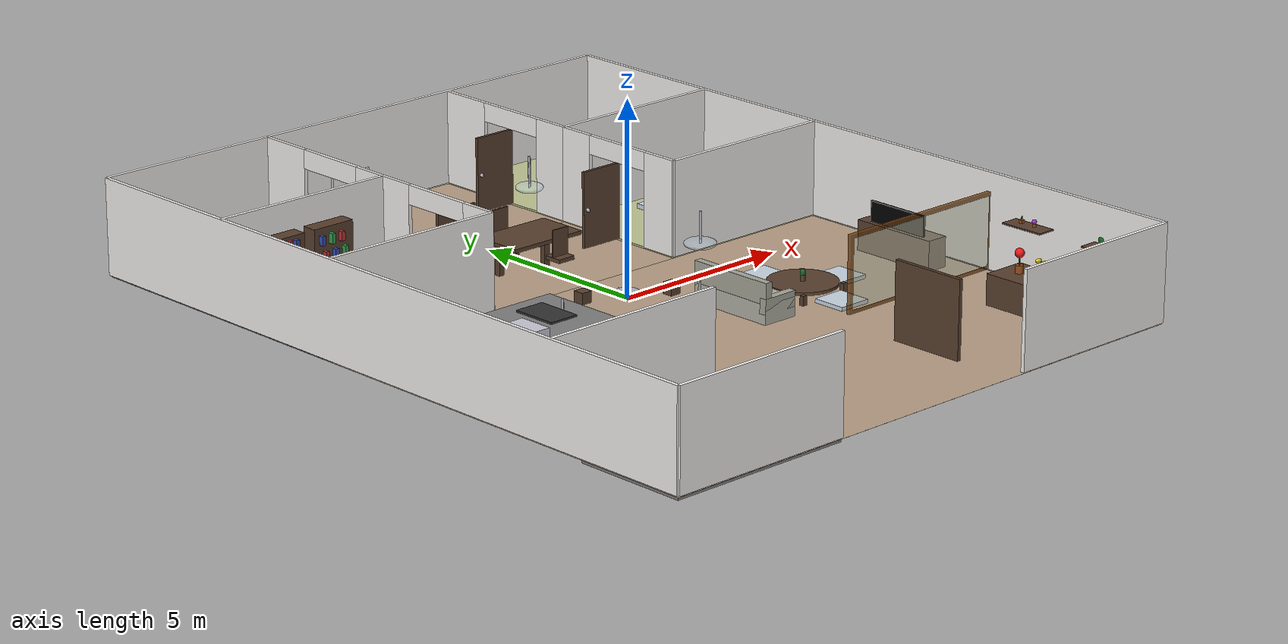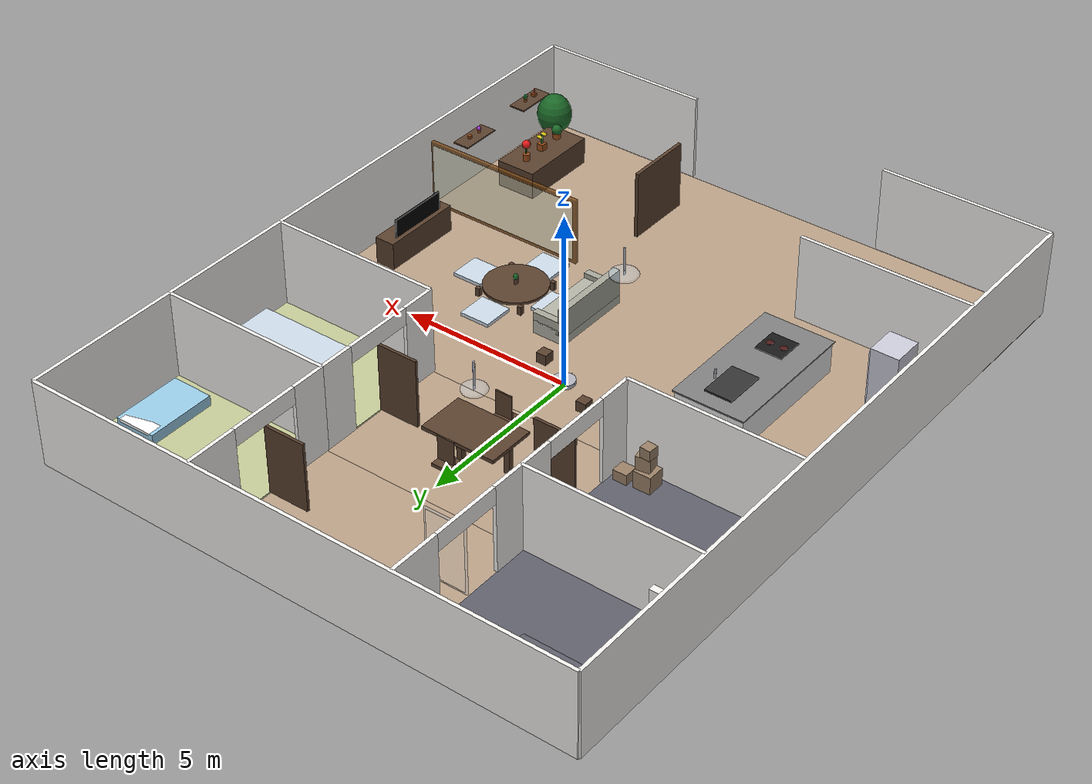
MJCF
<mujoco model="Japanese_320m2_Home">
  <compiler angle="degree" coordinate="local" inertiafromgeom="true"/>
  <option timestep="0.005" gravity="0 0 -9.81" density="1.2"/>

  <visual>
    <global offwidth="1920" offheight="1080" azimuth="140" elevation="-20"/>
    <quality shadowsize="4096"/>
    <map fogstart="25" fogend="40" znear="0.1"/>
  </visual>

  <default>
    <geom condim="3" friction="0.8 0.1 0.1" solimp="0.9 0.95 0.001" solref="0.02 1"/>
    <joint damping="1"/>
  </default>

  <asset>
    <texture name="tex_sky" type="skybox" builtin="gradient" rgb1="0.8 0.9 1.0" rgb2="0.6 0.8 0.9" width="512" height="512"/>

    <texture name="tex_floor_wood" type="2d" builtin="checker" rgb1="0.75 0.65 0.55" rgb2="0.7 0.6 0.5" width="512" height="512"/>
    <material name="mat_floor_wood" texture="tex_floor_wood" texrepeat="6 8" reflectance="0.2" specular="0.2"/>

    <texture name="tex_tatami" type="2d" builtin="checker" rgb1="0.78 0.8 0.6" rgb2="0.74 0.77 0.58" width="512" height="512"/>
    <material name="mat_tatami" texture="tex_tatami" texrepeat="8 8" reflectance="0.05" specular="0.05"/>

    <texture name="tex_tile" type="2d" builtin="checker" rgb1="0.4 0.4 0.45" rgb2="0.35 0.35 0.4" width="512" height="512"/>
    <material name="mat_tile" texture="tex_tile" texrepeat="8 8" reflectance="0.3" specular="0.3"/>

    <texture name="tex_wall" type="2d" builtin="flat" rgb1="0.96 0.95 0.94" width="512" height="512"/>
    <material name="mat_wall" texture="tex_wall" reflectance="0.1" specular="0.05"/>

    <material name="mat_wood_dark" rgba="0.35 0.25 0.18 1" reflectance="0.15" specular="0.2"/>
    <material name="mat_glass" rgba="0.8 0.9 1 0.3" reflectance="0.2" specular="0.4"/>
    <material name="mat_metal" rgba="0.7 0.7 0.75 1" reflectance="0.3" specular="0.5"/>
    <material name="mat_fabric" rgba="0.8 0.85 0.9 1" reflectance="0.05" specular="0.02"/>
    <material name="mat_stone" rgba="0.5 0.5 0.5 1" reflectance="0.1" specular="0.1"/>
    <material name="mat_plant" rgba="0.1 0.4 0.15 1" reflectance="0.1" specular="0.15"/>
    <material name="mat_pot" rgba="0.6 0.3 0.1 1" reflectance="0.1" specular="0.1"/> <!-- Terracotta -->
    <material name="mat_flower_red" rgba="0.9 0.1 0.1 1" reflectance="0.1" specular="0.1"/>
    <material name="mat_flower_yellow" rgba="0.9 0.8 0.1 1" reflectance="0.1" specular="0.1"/>
    <material name="mat_flower_purple" rgba="0.6 0.2 0.8 1" reflectance="0.1" specular="0.1"/>
    <material name="mat_cardboard" rgba="0.6 0.5 0.4 1" reflectance="0.1" specular="0.1"/>
    <material name="mat_tool_handle" rgba="0.8 0.1 0.1 1" reflectance="0.2" specular="0.2"/>
    <material name="mat_book_red" rgba="0.7 0.2 0.2 1" reflectance="0.1" specular="0.1"/>
    <material name="mat_book_blue" rgba="0.2 0.3 0.7 1" reflectance="0.1" specular="0.1"/>
    <material name="mat_book_green" rgba="0.2 0.6 0.3 1" reflectance="0.1" specular="0.1"/>

    <material name="mat_ceramic" rgba="0.9 0.9 0.95 1" reflectance="0.5" specular="0.5"/>
    <material name="mat_mirror" rgba="0.9 0.9 1 1" reflectance="0.95" specular="0.8"/>

    <!-- TV Screen Material -->
    <texture name="tex_screen" type="2d" builtin="flat" rgb1="0 0 0" width="800" height="450"/>
    <material name="mat_screen" texture="tex_screen" reflectance="0.1" specular="0.5"/>
  </asset>

  <worldbody>
    <light name="main_sun" directional="true" pos="-20 -15 30" dir="0.4 0.3 -1" diffuse="0.9 0.85 0.8" specular="0.3 0.3 0.3"/>
    <light name="fill_light" directional="true" pos="15 20 15" dir="-0.5 -0.5 -1" diffuse="0.4 0.4 0.45" specular="0.1 0.1 0.1"/>

    <!-- Perimeter walls -->
    <geom name="wall_north" type="box" pos="0 10 1.25" size="8 0.05 1.25" material="mat_wall"/>
    <geom name="wall_west"  type="box" pos="-8 0 1.25" size="0.05 10 1.25" material="mat_wall"/>

    <!-- Segmented East Wall (No Overlaps) -->
    <geom name="wall_east_living" type="box" pos="8 -4.25 1.25" size="0.05 5.75 1.25" material="mat_wall"/>
    <geom name="wall_east_master" type="box" pos="8 3.5 1.25" size="0.05 2 1.25" material="mat_wall"/>
    <geom name="wall_east_ne"     type="box" pos="8 7.75 1.25" size="0.05 2.25 1.25" material="mat_wall"/>

    <!-- ZONES (No Overlaps) -->
    <!-- South Living: Y -10 to 1.5 -->
    <geom name="zone_living_main" type="box" pos="0 -4.25 -0.049" size="8 5.75 0.001" material="mat_floor_wood"/>

    <!-- Central Block: Y 1.5 to 5.5 -->
    <!-- Kitchen (West): X -8 to -3 -->
    <geom name="zone_kitchen" type="box" pos="-5.5 3.5 -0.049" size="2.5 2 0.001" material="mat_tile"/>
    <!-- Dining/Hall (Center): X -3 to 3 -->
    <geom name="zone_dining" type="box" pos="0 3.5 -0.049" size="3 2 0.001" material="mat_floor_wood"/>
    <!-- Master Bedroom (East): X 3 to 8 -->
    <geom name="zone_bedroom_master" type="box" pos="5.5 3.5 -0.03" size="2.5 2 0.03" material="mat_tatami"/>

    <!-- North Block: Y 5.5 to 10 -->
    <!-- Bathroom (North West): X -8 to -3 -->
    <geom name="zone_bathroom" type="box" pos="-5.5 7.75 -0.049" size="2.5 2.25 0.001" material="mat_tile"/>
    <!-- North Center Room: X -3 to 3 -->
    <geom name="zone_room_north" type="box" pos="0 7.75 -0.049" size="3 2.25 0.001" material="mat_floor_wood"/>
    <!-- North East Room: X 3 to 8 -->
    <geom name="zone_bedroom_east" type="box" pos="5.5 7.75 -0.03" size="2.5 2.25 0.03" material="mat_tatami"/>

    <!-- Genkan (Entrance): In South Left corner -->
    <geom name="zone_genkan" type="box" pos="-5.5 -8.5 -0.08" size="2.5 1.5 0.03" material="mat_stone"/>

    <!-- Partition Wall (Genkan / Kitchen) -->
    <geom name="wall_genkan_kitchen" type="box" pos="-5.5 -6 1.25" size="2.5 0.05 1.25" material="mat_wall"/>

    <!-- New External Courtyard (Removed) -->

    <!-- INTERNAL PARTITIONS & WALLS (Trimmed) -->

    <!-- 1. Divider between South Living and Central Block (Y=1.5) -->
    <!-- Left (South of Kitchen) -->
    <geom name="wall_south_kitchen" type="box" pos="-5.5 1.5 1.25" size="2.5 0.05 1.25" material="mat_wall"/>
    <!-- Right (South of Master) -->
    <geom name="wall_south_master" type="box" pos="5.5 1.5 1.25" size="2.5 0.05 1.25" material="mat_wall"/>
    <!-- Center (Open or Partial?) Let's leave open for now -->

    <!-- 2. Divider between Central Block and North Block (Y=5.5) -->
    <!-- Left (Between Kitchen and Bathroom) -->
    <geom name="wall_kitchen_bath" type="box" pos="-5.5 5.5 1.25" size="2.5 0.05 1.25" material="mat_wall"/>
    <!-- Right (Between Master and NE Room) -->
    <geom name="wall_master_ne" type="box" pos="5.5 5.5 1.25" size="2.5 0.05 1.25" material="mat_wall"/>

    <!-- 3. Vertical Dividers (X=-3 and X=3) -->

    <!-- West Divider (Kitchen/Bath Wall) -->
    <!-- Segment 1: Kitchen East Wall (with Door Gap) -->
    <geom name="wall_kitchen_east_1" type="box" pos="-3 2 1.25" size="0.05 0.5 1.25" material="mat_wall"/>
    <geom name="wall_kitchen_east_2" type="box" pos="-3 5 1.25" size="0.05 0.5 1.25" material="mat_wall"/>
    <!-- Door Header -->
    <geom name="wall_kitchen_east_header" type="box" pos="-3 3.5 2.25" size="0.05 1 0.25" material="mat_wall"/>

    <!-- Segment 2: Bathroom East Wall (with Glass Door Gap) -->
    <geom name="wall_bath_east_1" type="box" pos="-3 6 1.25" size="0.05 0.5 1.25" material="mat_wall"/>
    <geom name="wall_bath_east_2" type="box" pos="-3 9.25 1.25" size="0.05 0.75 1.25" material="mat_wall"/>
    <!-- Door Header -->
    <geom name="wall_bath_east_header" type="box" pos="-3 7.5 2.25" size="0.05 1 0.25" material="mat_wall"/>

    <!-- East Divider (Master/NE Room Wall) -->
    <!-- Segment 1: Master West Wall (with Door Gap) -->
    <geom name="wall_master_west_1" type="box" pos="3 2 1.25" size="0.05 0.5 1.25" material="mat_wall"/>
    <geom name="wall_master_west_2" type="box" pos="3 5 1.25" size="0.05 0.5 1.25" material="mat_wall"/>
    <!-- Door Header -->
    <geom name="wall_master_west_header" type="box" pos="3 3.5 2.25" size="0.05 1 0.25" material="mat_wall"/>

    <!-- Segment 2: NE Room West Wall (Solid or Door?) Let's put a door too -->
    <geom name="wall_ne_west_1" type="box" pos="3 6 1.25" size="0.05 0.5 1.25" material="mat_wall"/>
    <geom name="wall_ne_west_2" type="box" pos="3 9.25 1.25" size="0.05 0.75 1.25" material="mat_wall"/>
    <geom name="wall_ne_west_header" type="box" pos="3 7.5 2.25" size="0.05 1 0.25" material="mat_wall"/>

    <!-- South Wall Openings -->
    <geom name="wall_south_left"  type="box" pos="-5.5 -10 1.25" size="2.5 0.05 1.25" material="mat_wall"/>
    <geom name="wall_south_right" type="box" pos="5.5 -10 1.25" size="2.5 0.05 1.25" material="mat_wall"/>

    <!-- DOORS -->

    <!-- Kitchen Door (Hinge) -->
    <body name="door_kitchen" pos="-3 3.5 1">
      <joint name="joint_door_kitchen" type="hinge" axis="0 0 1" range="-90 90"/>
      <geom type="box" pos="0.6 0 0" size="0.6 0.04 1" material="mat_wood_dark"/>
      <!-- Handle -->
      <geom type="sphere" pos="1.1 0.08 0" size="0.05" material="mat_metal"/>
    </body>

    <!-- Master Bedroom Door (Hinge) -->
    <body name="door_master" pos="3 3.5 1">
      <joint name="joint_door_master" type="hinge" axis="0 0 1" range="-90 90"/>
      <geom type="box" pos="-0.6 0 0" size="0.6 0.04 1" material="mat_wood_dark"/> <!-- Opens Inward/Left -->
      <geom type="sphere" pos="-1.1 -0.08 0" size="0.05" material="mat_metal"/>
    </body>

    <!-- Bathroom Door (Glass, Hinge) -->
    <body name="door_bathroom" pos="-3 7.5 1">
      <joint name="joint_door_bathroom" type="hinge" axis="0 0 1" range="-90 90"/>
      <geom type="box" pos="0.6 0 0" size="0.6 0.02 1" material="mat_glass"/>
      <geom type="box" pos="0.6 0 0" size="0.55 0.025 0.95" rgba="1 1 1 0.1"/> <!-- Frame effect -->
      <geom type="cylinder" pos="1.1 0.06 0" size="0.03 0.1" material="mat_metal"/> <!-- Handle -->
    </body>

    <!-- Storage Room (Relocated to West Middle Zone - Tile Floor) -->
    <!-- Bookcases (North Wall of this zone: Y approx 5.3) -->
    <body name="storage_bookcase_1" pos="-6.5 5.2 0.9">
      <geom type="box" size="0.6 0.2 0.9" material="mat_wood_dark"/>
      <!-- Books Row 1 -->
      <geom type="box" pos="-0.4 -0.15 0.7" size="0.05 0.18 0.12" material="mat_book_red"/>
      <geom type="box" pos="-0.25 -0.15 0.7" size="0.05 0.18 0.11" material="mat_book_blue"/>
      <geom type="box" pos="-0.1 -0.15 0.7" size="0.05 0.18 0.13" material="mat_book_green"/>
      <geom type="box" pos="0.1 -0.15 0.7" size="0.05 0.18 0.12" material="mat_book_red"/>
      <geom type="box" pos="0.3 -0.15 0.7" size="0.05 0.18 0.11" material="mat_book_blue"/>
      <!-- Books Row 2 -->
      <geom type="box" pos="-0.35 -0.15 0.3" size="0.05 0.18 0.12" material="mat_book_green"/>
      <geom type="box" pos="-0.15 -0.15 0.3" size="0.05 0.18 0.11" material="mat_book_red"/>
      <geom type="box" pos="0.1 -0.15 0.3" size="0.05 0.18 0.13" material="mat_book_blue"/>
      <geom type="box" pos="0.35 -0.15 0.3" size="0.05 0.18 0.12" material="mat_book_green"/>
    </body>
    <body name="storage_bookcase_2" pos="-5.0 5.2 0.9">
      <geom type="box" size="0.6 0.2 0.9" material="mat_wood_dark"/>
      <!-- Books Row 1 -->
      <geom type="box" pos="-0.4 -0.15 0.6" size="0.05 0.18 0.12" material="mat_book_blue"/>
      <geom type="box" pos="-0.1 -0.15 0.6" size="0.05 0.18 0.13" material="mat_book_green"/>
      <geom type="box" pos="0.2 -0.15 0.6" size="0.05 0.18 0.12" material="mat_book_red"/>
       <!-- Books Row 2 -->
      <geom type="box" pos="-0.3 -0.15 0.2" size="0.05 0.18 0.11" material="mat_book_red"/>
      <geom type="box" pos="0 -0.15 0.2" size="0.05 0.18 0.12" material="mat_book_blue"/>
      <geom type="box" pos="0.3 -0.15 0.2" size="0.05 0.18 0.13" material="mat_book_green"/>
    </body>

    <!-- Wall Shelves & Tools (West Wall of this zone: X approx -7.8) -->
    <body name="storage_shelf_upper" pos="-7.8 3.5 1.6">
      <geom type="box" size="0.15 0.8 0.02" material="mat_wood_dark"/>
      <!-- Hanging Hammer -->
      <body name="tool_hammer" pos="0.1 0.3 -0.2">
         <geom type="cylinder" size="0.02 0.15" material="mat_tool_handle" euler="0 0 0"/> <!-- Handle -->
         <geom type="box" pos="0 0 0.15" size="0.08 0.03 0.03" material="mat_metal"/> <!-- Head -->
      </body>
      <!-- Hanging Wrench -->
      <body name="tool_wrench" pos="0.1 -0.3 -0.2">
         <geom type="cylinder" size="0.015 0.12" material="mat_metal"/>
         <geom type="cylinder" pos="0 0 -0.12" size="0.03 0.01" material="mat_metal" euler="90 0 0"/>
      </body>
    </body>
    <body name="storage_shelf_lower" pos="-7.8 3.5 1.2">
      <geom type="box" size="0.15 0.8 0.02" material="mat_wood_dark"/>
      <!-- Hanging Screwdriver -->
      <body name="tool_screwdriver" pos="0.1 0 -0.2">
         <geom type="cylinder" size="0.02 0.08" material="mat_tool_handle"/> <!-- Handle -->
         <geom type="cylinder" pos="0 0 -0.1" size="0.005 0.1" material="mat_metal"/> <!-- Shaft -->
      </body>
    </body>

    <!-- Stacked Cardboard Boxes (SE Corner of this zone: X approx -3.5, Y approx 2.0) -->
    <body name="box_stack" pos="-4.0 2.0 0.3">
      <geom type="box" size="0.25 0.25 0.25" material="mat_cardboard" mass="5"/>
      <geom type="box" pos="0.05 0 0.5" size="0.2 0.2 0.2" material="mat_cardboard" mass="3" euler="0 0 10"/>
      <geom type="box" pos="-0.05 0.05 0.85" size="0.15 0.15 0.15" material="mat_cardboard" mass="1" euler="0 0 -5"/>
      <geom type="box" pos="0.6 0.1 -0.1" size="0.2 0.2 0.15" material="mat_cardboard" mass="2"/>
    </body>

    <!-- NE Room Door (Hinge) -->
    <body name="door_ne" pos="3 7.5 1">
      <joint name="joint_door_ne" type="hinge" axis="0 0 1" range="-90 90"/>
      <geom type="box" pos="-0.6 0 0" size="0.6 0.04 1" material="mat_wood_dark"/>
      <geom type="sphere" pos="-1.1 -0.08 0" size="0.05" material="mat_metal"/>
    </body>

    <!-- FURNITURE (Adjusted Positions) -->

    <!-- Living Room Center (Moved towards TV) -->
    <body name="chabudai" pos="3.5 -2.5 0.2">
      <geom type="cylinder" size="0.9 0.04" material="mat_wood_dark"/>
      <geom type="box" pos="0.7 0.7 -0.14" size="0.06 0.06 0.14" material="mat_wood_dark"/>
      <geom type="box" pos="-0.7 0.7 -0.14" size="0.06 0.06 0.14" material="mat_wood_dark"/>
      <geom type="box" pos="0.7 -0.7 -0.14" size="0.06 0.06 0.14" material="mat_wood_dark"/>
      <geom type="box" pos="-0.7 -0.7 -0.14" size="0.06 0.06 0.14" material="mat_wood_dark"/>
    </body>

    <body name="vase_chabudai" pos="3.5 -2.5 0.32">
      <geom type="cylinder" size="0.06 0.08" material="mat_wood_dark"/>
      <geom type="ellipsoid" pos="0 0 0.12" size="0.07 0.07 0.1" material="mat_plant"/>
    </body>

    <body name="zabuton_1" pos="3.5 -1.2 0.05">
      <geom type="box" size="0.45 0.45 0.05" material="mat_fabric"/>
    </body>
    <body name="zabuton_2" pos="3.5 -3.8 0.05">
      <geom type="box" size="0.45 0.45 0.05" material="mat_fabric"/>
    </body>
    <body name="zabuton_3" pos="4.8 -2.5 0.05">
      <geom type="box" size="0.45 0.45 0.05" material="mat_fabric"/>
    </body>
    <body name="zabuton_4" pos="2.2 -2.5 0.05">
      <geom type="box" size="0.45 0.45 0.05" material="mat_fabric"/>
    </body>

    <!-- New Sofa (Facing TV, behind Chabudai) -->
    <body name="sofa_main" pos="1.5 -2.5 0.25">
      <!-- Base -->
      <geom type="box" size="0.5 1.2 0.25" material="mat_fabric" rgba="0.7 0.7 0.65 1"/>
      <!-- Backrest -->
      <geom type="box" pos="-0.4 0 0.4" size="0.1 1.2 0.4" material="mat_fabric" rgba="0.65 0.65 0.6 1"/>
      <!-- Armrests -->
      <geom type="box" pos="0 1.1 0.2" size="0.5 0.1 0.2" material="mat_fabric" rgba="0.65 0.65 0.6 1"/>
      <geom type="box" pos="0 -1.1 0.2" size="0.5 0.1 0.2" material="mat_fabric" rgba="0.65 0.65 0.6 1"/>
    </body>

    <body name="tv_shelf" pos="7 -2.5 0.4">
      <geom type="box" size="0.3 1.2 0.4" material="mat_wood_dark"/>
      <!-- TV Frame -->
      <geom type="box" pos="-0.15 0 0.6" size="0.02 0.9 0.35" rgba="0.1 0.1 0.1 1"/>
      <!-- TV Screen Surface (Facing West) -->
      <geom name="screen_geom" type="box" pos="-0.171 0 0.6" size="0.001 0.88 0.33" material="mat_screen"/>
    </body>

    <!-- Partition Screen (Separating TV area and Plant Room) -->
    <body name="plant_room_screen" pos="5.5 -4.5 1">
      <geom type="box" size="2.5 0.05 1" material="mat_wood_dark" rgba="0.5 0.3 0.1 0.8"/> <!-- Semi-transparent wood screen -->
      <geom type="box" pos="0 0 0" size="2.4 0.06 0.9" material="mat_fabric" rgba="0.9 0.9 0.8 0.6"/> <!-- Paper/Fabric insert -->
    </body>

    <!-- Plant Room (South East Corner) -->

    <!-- Central Table for Medium Plants -->
    <body name="plant_table" pos="6.5 -7.5 0.4">
      <geom type="box" size="0.6 1.2 0.4" material="mat_wood_dark"/>
    </body>

    <!-- Wall Shelves for Small Plants (High up) -->
    <body name="plant_shelf_1" pos="7.7 -6.0 1.5">
      <geom type="box" size="0.25 0.6 0.02" material="mat_wood_dark"/>
    </body>
    <body name="plant_shelf_2" pos="7.7 -8.5 1.5">
      <geom type="box" size="0.25 0.6 0.02" material="mat_wood_dark"/>
    </body>

    <!-- PLANTS -->

    <!-- Large Tree (Floor) -->
    <body name="bonsai_large_tree" pos="7.2 -9.0 0">
       <geom type="cylinder" pos="0 0 0.3" size="0.08 0.3" material="mat_wood_dark"/> <!-- Trunk -->
       <geom type="ellipsoid" pos="0 0 1.0" size="0.5 0.5 0.6" material="mat_plant"/> <!-- Foliage -->
       <geom type="cylinder" pos="0 0 0.1" size="0.25 0.15" material="mat_pot"/> <!-- Pot -->
    </body>

    <!-- Medium Plants (Table) -->
    <body name="bonsai_med_1" pos="6.5 -6.8 0.85">
       <geom type="cylinder" pos="0 0 0.05" size="0.1 0.1" material="mat_pot"/>
       <geom type="capsule" pos="0 0 0.25" size="0.02 0.15" material="mat_plant"/> <!-- Stem -->
       <geom type="sphere" pos="0 0 0.45" size="0.12" material="mat_flower_red"/> <!-- Flower -->
    </body>
    <body name="bonsai_med_2" pos="6.5 -7.5 0.85">
       <geom type="box" pos="0 0 0.05" size="0.1 0.1 0.1" material="mat_pot"/>
       <geom type="cylinder" pos="0 0 0.25" size="0.03 0.15" material="mat_plant"/>
       <geom type="ellipsoid" pos="0 0.1 0.4" size="0.1 0.05 0.05" material="mat_flower_yellow"/> <!-- Leaf/Flower -->
       <geom type="ellipsoid" pos="0 -0.1 0.4" size="0.1 0.05 0.05" material="mat_flower_yellow"/>
    </body>
    <body name="bonsai_med_3" pos="6.5 -8.2 0.85">
       <geom type="cylinder" pos="0 0 0.08" size="0.12 0.08" material="mat_pot"/>
       <geom type="sphere" pos="0 0 0.25" size="0.15" material="mat_plant"/> <!-- Bushy -->
    </body>

    <!-- Small Plants (Shelves) -->
    <body name="bonsai_small_1" pos="7.7 -5.8 1.55">
       <geom type="box" pos="0 0 0.04" size="0.05 0.05 0.04" material="mat_pot"/>
       <geom type="capsule" pos="0 0 0.12" size="0.01 0.05" material="mat_plant"/>
    </body>
    <body name="bonsai_small_2" pos="7.7 -6.2 1.55">
       <geom type="cylinder" pos="0 0 0.04" size="0.05 0.04" material="mat_pot"/>
       <geom type="sphere" pos="0 0 0.12" size="0.06" material="mat_flower_purple"/>
    </body>
    <body name="bonsai_small_3" pos="7.7 -8.3 1.55">
       <geom type="cylinder" pos="0 0 0.04" size="0.05 0.04" material="mat_pot"/>
       <geom type="ellipsoid" pos="0 0 0.15" size="0.04 0.08 0.08" material="mat_plant"/> <!-- Cactus-like -->
    </body>
    <body name="bonsai_small_4" pos="7.7 -8.7 1.55">
       <geom type="box" pos="0 0 0.04" size="0.06 0.06 0.04" material="mat_pot"/>
       <geom type="capsule" pos="0 0 0.15" size="0.01 0.08" material="mat_flower_red"/>
    </body>

    <!-- Open Kitchen (Opposite TV, West Side) -->
    <body name="kitchen_counter_island" pos="-4 -2.5 0.45">
      <geom type="box" size="1.0 2.0 0.45" material="mat_wall" rgba="0.9 0.9 0.9 1"/> <!-- White Counter -->
      <geom type="box" pos="0 0 0.46" size="1.05 2.05 0.02" material="mat_stone"/> <!-- Stone Top -->

      <!-- Sink -->
      <geom type="box" pos="0 1.0 0.48" size="0.4 0.6 0.05" rgba="0.2 0.2 0.2 1"/> <!-- Sink Basin -->
      <geom type="cylinder" pos="0.5 1.0 0.6" size="0.03 0.15" material="mat_metal"/> <!-- Faucet -->

      <!-- Stove -->
      <geom type="box" pos="0 -1.0 0.49" size="0.4 0.4 0.02" rgba="0.1 0.1 0.1 1"/>
      <geom type="cylinder" pos="0.2 -1.0 0.51" size="0.1 0.01" rgba="0.3 0.1 0.1 1"/>
      <geom type="cylinder" pos="-0.2 -1.0 0.51" size="0.1 0.01" rgba="0.3 0.1 0.1 1"/>
    </body>

    <body name="fridge" pos="-7 -4 1.0">
      <geom type="box" size="0.4 0.45 1.0" material="mat_metal" rgba="0.8 0.8 0.85 1"/>
      <geom type="box" pos="0.41 0.05 0.2" size="0.02 0.4 0.7" rgba="0.85 0.85 0.9 1"/> <!-- Top Door -->
      <geom type="box" pos="0.41 0.05 -0.7" size="0.02 0.4 0.25" rgba="0.85 0.85 0.9 1"/> <!-- Bottom Door -->
      <geom type="cylinder" pos="0.45 -0.3 0.2" size="0.02 0.15" material="mat_metal"/> <!-- Handle -->
    </body>

    <!-- Kitchen Block (Old one removed/commented out) -->

    <!-- Dining Table (Moved to Center Zone) -->
    <body name="dining_table" pos="0 3.5 0.75">
      <geom type="box" size="1.1 0.7 0.05" material="mat_wood_dark"/>
      <geom type="box" pos="1.0 0 -0.5" size="0.08 0.08 0.5" material="mat_wood_dark"/>
      <geom type="box" pos="-1.0 0 -0.5" size="0.08 0.08 0.5" material="mat_wood_dark"/>
      <geom type="box" pos="0 0.55 -0.5" size="0.08 0.08 0.5" material="mat_wood_dark"/>
      <geom type="box" pos="0 -0.55 -0.5" size="0.08 0.08 0.5" material="mat_wood_dark"/>
    </body>
    <body name="dining_chair_1" pos="0 4.6 0.45">
      <geom type="box" size="0.25 0.25 0.05" material="mat_wood_dark"/>
      <geom type="box" pos="0 0 0.4" size="0.25 0.02 0.35" material="mat_wood_dark"/>
    </body>
    <body name="dining_chair_2" pos="0 2.4 0.45">
      <geom type="box" size="0.25 0.25 0.05" material="mat_wood_dark"/>
      <geom type="box" pos="0 0 0.4" size="0.25 0.02 0.35" material="mat_wood_dark"/>
    </body>

    <body name="chandelier_living" pos="0 -2.5 2.4">
      <geom type="cylinder" size="0.03 0.4" material="mat_metal"/>
      <geom type="ellipsoid" pos="0 0 -0.4" size="0.4 0.4 0.12" material="mat_glass"/>
    </body>

    <body name="chandelier_dining" pos="0 3.5 2.4">
      <geom type="cylinder" size="0.03 0.4" material="mat_metal"/>
      <geom type="ellipsoid" pos="0 0 -0.4" size="0.35 0.35 0.12" material="mat_glass"/>
    </body>

    <!-- Master Bedroom Furniture -->
    <body name="futon" pos="6.4 3.5 0.18">
      <geom type="box" size="1.6 1.2 0.06" material="mat_fabric"/>
      <geom type="box" pos="0 0.9 0.07" size="1.0 0.25 0.04" material="mat_fabric"/>
    </body>
    <body name="bedside_left" pos="6.4 5.0 0.35">
      <geom type="box" size="0.3 0.25 0.3" material="mat_wood_dark"/>
      <geom type="cylinder" pos="0 0 0.35" size="0.05 0.08" material="mat_metal"/>
      <geom type="ellipsoid" pos="0 0 0.5" size="0.12 0.12 0.12" material="mat_glass"/>
    </body>

    <!-- Child Bedroom (North East) -->
    <body name="child_bed" pos="7.0 7.0 0.2">
      <geom type="box" size="0.6 1.0 0.15" material="mat_fabric" rgba="0.6 0.8 0.9 1"/> <!-- Blue Bed -->
      <geom type="box" pos="0 0.8 0.1" size="0.5 0.2 0.05" rgba="1 1 1 1"/> <!-- Pillow -->
    </body>
    <body name="child_desk" pos="7.0 9.0 0.35">
      <geom type="box" size="0.6 0.3 0.35" material="mat_wood_dark"/>
    </body>

    <!-- Bathroom Furniture -->
    <body name="toilet" pos="-7 6 0.3">
       <geom type="box" size="0.25 0.35 0.25" material="mat_wall"/>
       <geom type="box" pos="0 -0.3 0.3" size="0.25 0.1 0.4" material="mat_wall"/>
       <geom type="cylinder" pos="0 0 0.25" size="0.2 0.05" rgba="1 1 1 1"/>
    </body>
    <body name="bath_tub" pos="-6.5 9 0.4">
       <geom type="box" size="1.2 0.6 0.4" material="mat_tile"/>
       <geom type="box" pos="0 0 0.1" size="1.0 0.4 0.3" rgba="0.8 0.9 1 0.5"/> <!-- Water -->
    </body>
    <body name="towel_rack" pos="-7.9 8 1.5">
       <geom type="cylinder" size="0.02 0.4" euler="90 0 0" material="mat_metal"/>
       <geom type="box" pos="0 0 -0.2" size="0.01 0.3 0.2" material="mat_fabric"/>
    </body>

    <body name="washbasin" pos="-7.75 7.0 0.8">
       <geom type="box" size="0.25 0.4 0.05" material="mat_ceramic"/> <!-- Basin Counter -->
       <geom type="box" pos="0 0 -0.05" size="0.2 0.35 0.05" material="mat_ceramic" rgba="0.8 0.8 0.85 1"/> <!-- Bowl inset visual -->
       <geom type="cylinder" pos="-0.15 0 0.1" size="0.02 0.1" material="mat_metal"/> <!-- Faucet Stem (Back/Wall side) -->
       <geom type="cylinder" pos="-0.05 0 0.18" size="0.015 0.12" euler="0 45 0" material="mat_metal"/> <!-- Faucet Spout (Pointing Forward) -->
    </body>

    <body name="bathroom_mirror" pos="-7.95 7.0 1.2"> <!-- Top at 1.55, Bottom at 0.85 -> Center 1.2, Size Z 0.35 -->
       <geom type="box" size="0.02 0.4 0.35" material="mat_mirror"/>
    </body>

    <!-- Genkan Furniture -->
    <body name="genkan_step" pos="-4.5 -8.5 -0.02">
      <geom type="box" size="1.0 0.8 0.03" material="mat_floor_wood"/>
    </body>
    <body name="genkan_shoe_cabinet" pos="-7.75 -8.5 0.5">
      <geom type="box" size="0.25 0.8 0.5" material="mat_wood_dark"/>
    </body>
    <body name="genkan_bench" pos="-3.6 -7.5 0.25">
      <geom type="box" size="0.7 0.25 0.25" material="mat_wood_dark"/>
    </body>
    <body name="corridor_screen" pos="2.5 -7.5 1">
      <geom type="box" size="0.05 1 1" material="mat_wood_dark"/>
    </body>

    <!-- Courtyard Furniture (Removed) -->

    <!-- Robot & Blocks -->
    <body name="block_1" pos="-1 0.5 0.15">
      <freejoint/>
      <geom type="box" size="0.15 0.15 0.15" material="mat_wood_dark" mass="1"/>
    </body>
    <body name="block_2" pos="1 -0.5 0.15">
      <freejoint/>
      <geom type="box" size="0.15 0.15 0.15" material="mat_wood_dark" mass="1"/>
    </body>

    <body name="vacuum_base" pos="0 0 0.1">
      <freejoint/>
      <geom name="vacuum_body" type="cylinder" pos="0 0 0.02" size="0.3 0.06" material="mat_metal" mass="4"/>
      <body name="vacuum_wheel_left" pos="0 0.22 0">
        <joint name="vacuum_wheel_left_hinge" type="hinge" axis="0 1 0"/>
        <geom type="sphere" size="0.06" material="mat_metal" mass="0.2" friction="1.5 0.005 0.0001"/>
      </body>
      <body name="vacuum_wheel_right" pos="0 -0.22 0">
        <joint name="vacuum_wheel_right_hinge" type="hinge" axis="0 1 0"/>
        <geom type="sphere" size="0.06" material="mat_metal" mass="0.2" friction="1.5 0.005 0.0001"/>
      </body>

      <geom name="caster_front" type="sphere" pos="0.25 0 -0.01" size="0.05" rgba="0.5 0.5 0.5 1" friction="0 0 0" mass="0.1"/>
      <geom name="caster_back"  type="sphere" pos="-0.25 0 -0.01" size="0.05" rgba="0.5 0.5 0.5 1" friction="0 0 0" mass="0.1"/>

      <site name="vacuum_rf_front"  pos="0.32 0 0.08" size="0.02" type="ellipsoid" rgba="0 1 0 0.4"/>
          <site name="vacuum_rf_front_left"  pos="0.25 0.25 0.08" size="0.02" type="ellipsoid" rgba="0 1 0 0.4" zaxis="1 1 0"/>
          <site name="vacuum_rf_front_right" pos="0.25 -0.25 0.08" size="0.02" type="ellipsoid" rgba="0 1 0 0.4" zaxis="1 -1 0"/>
          <site name="vacuum_rf_back"   pos="-0.32 0 0.08" size="0.02" type="ellipsoid" rgba="0 1 0 0.4"/>
      <site name="vacuum_rf_left"   pos="0 0.32 0.08" size="0.02" type="ellipsoid" rgba="0 1 0 0.4"/>
      <site name="vacuum_rf_right"  pos="0 -0.32 0.08" size="0.02" type="ellipsoid" rgba="0 1 0 0.4"/>
    </body>

  </worldbody>

  <actuator>
    <motor name="vacuum_motor_left"  joint="vacuum_wheel_left_hinge"  gear="50"/>
    <motor name="vacuum_motor_right" joint="vacuum_wheel_right_hinge" gear="50"/>
  </actuator>

  <sensor>
    <rangefinder name="rf_front" site="vacuum_rf_front"/>
    <rangefinder name="rf_front_left" site="vacuum_rf_front_left"/>
    <rangefinder name="rf_front_right" site="vacuum_rf_front_right"/>
    <rangefinder name="rf_back"  site="vacuum_rf_back"/>
    <rangefinder name="rf_left"  site="vacuum_rf_left"/>
    <rangefinder name="rf_right" site="vacuum_rf_right"/>
  </sensor>
</mujoco>
